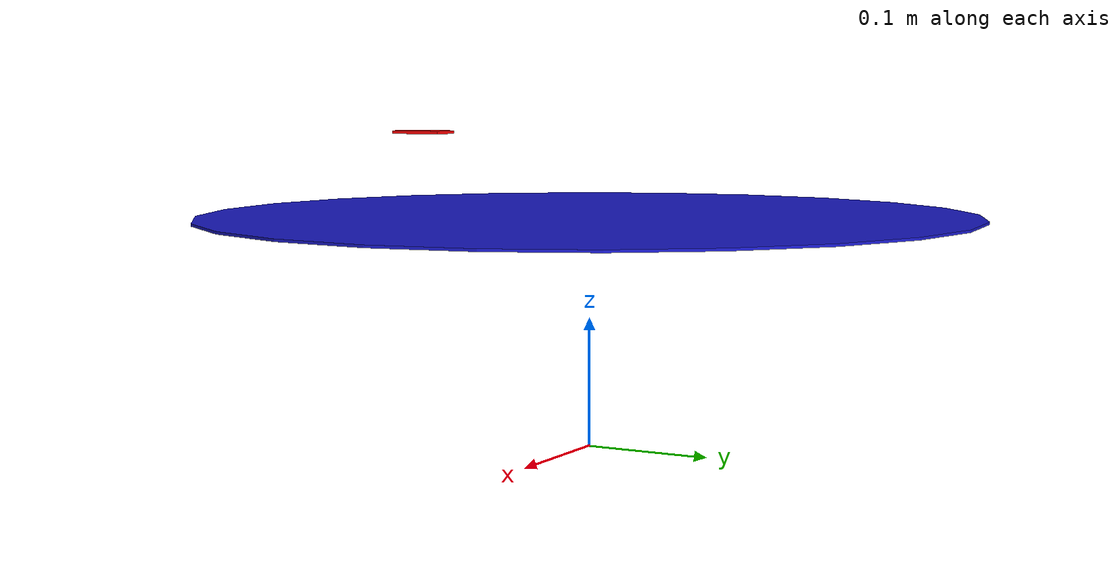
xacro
<?xml version="1.0"?>

<robot name="transporter">
  <property name="M_PI" value="3.14159"/>
  <material name="Blue">
    <color rgba="0.1 0.1 0.8 1.0"/>
  </material>
  <material name="Green">
    <color rgba="0.1 0.6 0.0 0.2"/>
  </material>
  <material name="Black">
    <color rgba="0.0 0.0 0.0 1.0"/>
  </material>
  <material name="Red">
    <color rgba="1.0 0.0 0.0 1.0"/>
  </material>

  <!-- base_footprint is a fictitious link(frame) that is on the ground right below base_link origin, navigation stack depends on this frame -->
  <link name="base_footprint">
    <inertial>
      <mass value="0.0001" />
      <inertia ixx="0.0001" ixy="0.0" ixz="0.0"
              iyy="0.0001" iyz="0.0" izz="0.0001" />
    </inertial>
    <visual>
      <origin xyz="0 0 0" rpy="0 0 0" />
      <geometry>
        <box size="0.001 0.001 0.001" />
      </geometry>
      <material name="Green" />
    </visual>
  </link> <!-- base_footprint -->

  <joint name="base_footprint_joint" type="fixed">
    <origin xyz="0 0 0.178" rpy="0 0 0" />
    <parent link="base_footprint"/>
    <child link="base_link" />
  </joint>

  <link name="base_link">
    <inertial>
      <mass value="15" />
      <origin xyz="0 0 0" />
      <inertia ixx="1.0" ixy="0.0" ixz="0.0"
				iyy="1.0" iyz="0.0" izz="1.0" />
    </inertial>
    <visual>
      <origin xyz="0 0 0" rpy="0 0 0" />
      <geometry>
        <cylinder length="0.002" radius="0.300"/>
      </geometry>
      <material name="Blue"/>
    </visual>
    <collision>
      <origin xyz="0 0 0.89" rpy="0 0 0" />
      <geometry>
        <cylinder length="0.18" radius="0.350"/>
      </geometry>
    </collision>
  </link> <!-- base_link -->

  <joint name="laser_joint" type="fixed">
    <origin xyz="0.23 0.0 0.070" rpy="0 0 0" />
    <parent link="base_link" />
    <child link="laser" />
  </joint>

  <link name="laser">
    <visual>
      <geometry>
        <box size="0.02 0.035 0.002" />
      </geometry>
      <material name="Red" />
    </visual>
    <inertial>
      <mass value="0.150" />
      <origin xyz="0 0 0" />
      <inertia ixx="0.0001" ixy="0.0" ixz="0.0"
        iyy="0.0001" iyz="0.0"
        izz="0.0001" />
    </inertial>
  </link>

</robot>
